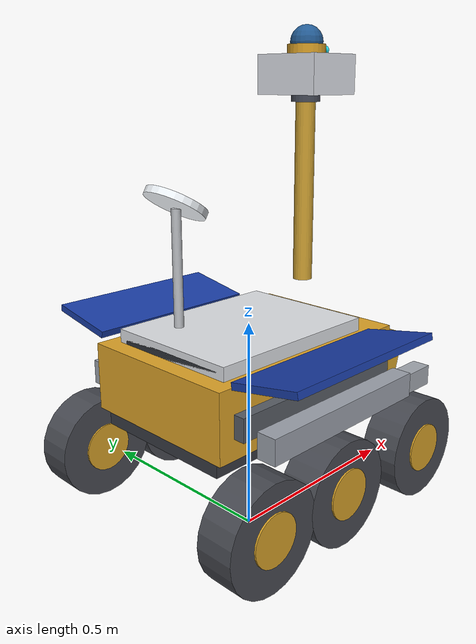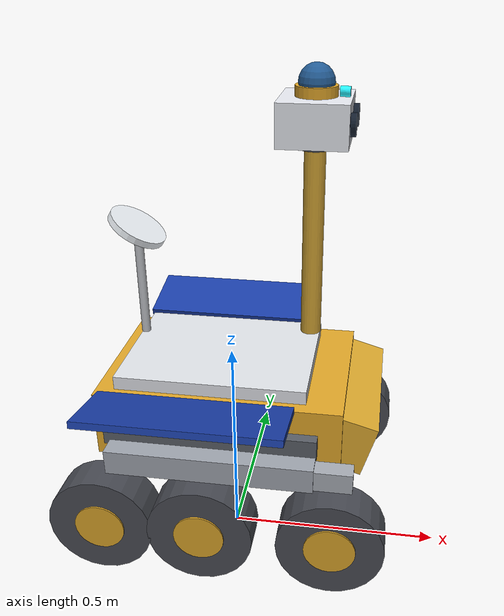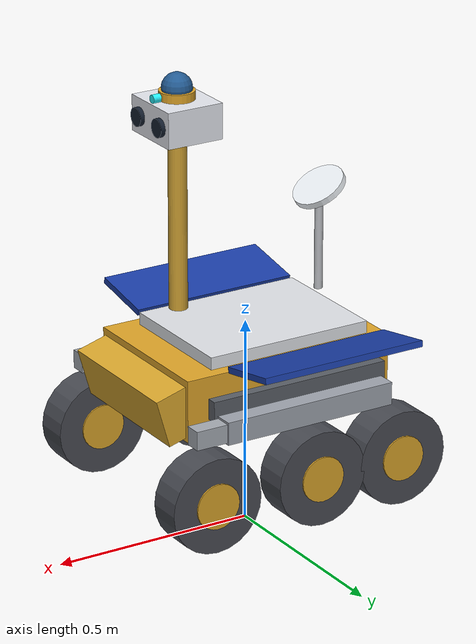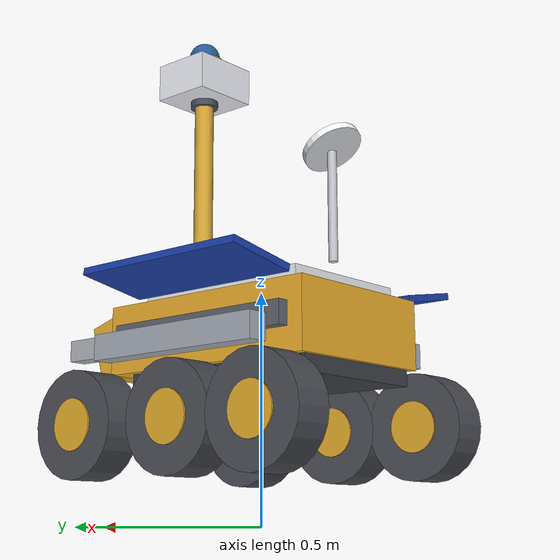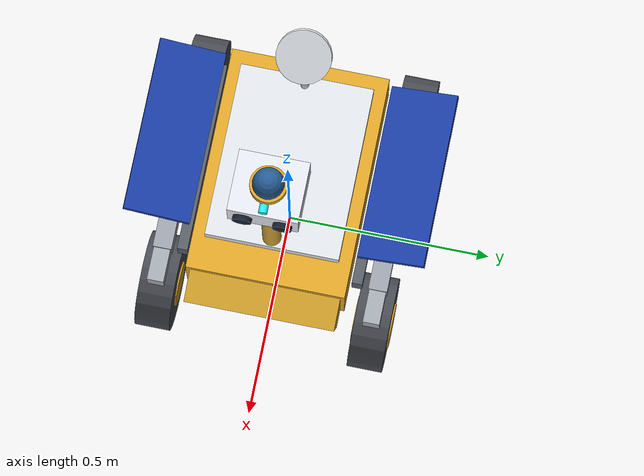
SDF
<?xml version="1.0"?>
<sdf version="1.9">
  <model name="lunabot_v4">
    <pose>0 0 0.52 0 0 0</pose>

    <!-- ================= MAIN CHASSIS (COMPACT TRUE-SCALE LUNAR ROVER: 0.54m x 0.38m GOLD MLI FOIL BODY) ================= -->
    <link name="chassis">
      <pose>0 0 0 0 0 0</pose>
      <inertial>
        <pose>0 0 -0.26 0 0 0</pose><mass>18.0</mass>
        <inertia><ixx>0.48</ixx><ixy>0</ixy><ixz>0</ixz><iyy>0.72</iyy><iyz>0</iyz><izz>0.96</izz></inertia>
      </inertial>
      <collision name="body_collision"><pose>0 0 -0.12 0 0 0</pose><geometry><box><size>0.54 0.38 0.15</size></box></geometry></collision>
      <visual name="body_visual">
        <pose>0 0 -0.12 0 0 0</pose>
        <geometry><box><size>0.54 0.38 0.15</size></box></geometry>
        <material><ambient>0.68 0.48 0.10 1</ambient><diffuse>0.88 0.65 0.16 1</diffuse><specular>0.75 0.65 0.28 1</specular></material>
      </visual>
      <visual name="radiator_louver_visual">
        <pose>-0.04 0 -0.04 0 0 0</pose>
        <geometry><box><size>0.38 0.28 0.02</size></box></geometry>
        <material><ambient>0.12 0.13 0.15 1</ambient><diffuse>0.18 0.20 0.23 1</diffuse><specular>0.4 0.4 0.45 1</specular></material>
      </visual>
    </link>

    <!-- ================= LOWER ARMOR ================= -->
    <link name="lower_armor">
      <pose relative_to="chassis">-0.02 0 -0.21 0 0 0</pose>
      <inertial><mass>1.5</mass><inertia><ixx>0.03</ixx><ixy>0</ixy><ixz>0</ixz><iyy>0.06</iyy><iyz>0</iyz><izz>0.08</izz></inertia></inertial>
      <collision name="armor_collision"><geometry><box><size>0.48 0.34 0.04</size></box></geometry></collision>
      <visual name="armor_visual">
        <geometry><box><size>0.48 0.34 0.04</size></box></geometry>
        <material><ambient>0.15 0.16 0.18 1</ambient><diffuse>0.22 0.23 0.26 1</diffuse></material>
      </visual>
    </link>
    <joint name="lower_armor_joint" type="fixed"><parent>chassis</parent><child>lower_armor</child></joint>

    <!-- ================= UPPER ELECTRONICS DECK ================= -->
    <link name="upper_deck">
      <pose relative_to="chassis">-0.02 0 -0.03 0 0 0</pose>
      <inertial><mass>1.8</mass><inertia><ixx>0.03</ixx><ixy>0</ixy><ixz>0</ixz><iyy>0.05</iyy><iyz>0</iyz><izz>0.07</izz></inertia></inertial>
      <collision name="deck_collision"><geometry><box><size>0.42 0.32 0.03</size></box></geometry></collision>
      <visual name="deck_visual">
        <geometry><box><size>0.42 0.32 0.03</size></box></geometry>
        <material><ambient>0.75 0.76 0.78 1</ambient><diffuse>0.88 0.89 0.91 1</diffuse></material>
      </visual>
    </link>
    <joint name="upper_deck_joint" type="fixed"><parent>chassis</parent><child>upper_deck</child></joint>

    <!-- ================= FRONT ARMOR / APXS SPECTROMETER BUMPER ================= -->
    <link name="front_armor">
      <pose relative_to="chassis">0.29 0 -0.13 0 0.28 0</pose>
      <inertial><mass>0.8</mass><inertia><ixx>0.02</ixx><ixy>0</ixy><ixz>0</ixz><iyy>0.01</iyy><iyz>0</iyz><izz>0.02</izz></inertia></inertial>
      <collision name="front_armor_collision"><geometry><box><size>0.08 0.36 0.12</size></box></geometry></collision>
      <visual name="front_armor_visual">
        <geometry><box><size>0.08 0.36 0.12</size></box></geometry>
        <material><ambient>0.72 0.55 0.15 1</ambient><diffuse>0.86 0.66 0.18 1</diffuse><specular>0.8 0.7 0.4 1</specular></material>
      </visual>
    </link>
    <joint name="front_armor_joint" type="fixed"><parent>chassis</parent><child>front_armor</child></joint>

    <!-- ================= SIDE RAILS ================= -->
    <link name="left_side_rail">
      <pose relative_to="chassis">-0.01 0.21 -0.12 0 0 0</pose>
      <inertial><mass>0.3</mass><inertia><ixx>0.0004</ixx><iyy>0.01</iyy><izz>0.01</izz></inertia></inertial>
      <visual name="rail_visual"><geometry><box><size>0.46 0.025 0.05</size></box></geometry><material><ambient>0.22 0.24 0.27 1</ambient><diffuse>0.35 0.37 0.40 1</diffuse></material></visual>
    </link>
    <joint name="left_side_rail_joint" type="fixed"><parent>chassis</parent><child>left_side_rail</child></joint>

    <link name="right_side_rail">
      <pose relative_to="chassis">-0.01 -0.21 -0.12 0 0 0</pose>
      <inertial><mass>0.3</mass><inertia><ixx>0.0004</ixx><iyy>0.01</iyy><izz>0.01</izz></inertia></inertial>
      <visual name="rail_visual"><geometry><box><size>0.46 0.025 0.05</size></box></geometry><material><ambient>0.22 0.24 0.27 1</ambient><diffuse>0.35 0.37 0.40 1</diffuse></material></visual>
    </link>
    <joint name="right_side_rail_joint" type="fixed"><parent>chassis</parent><child>right_side_rail</child></joint>

    <!-- ================= LEFT ROCKER ================= -->
    <joint name="left_rocker_joint" type="revolute">
      <pose relative_to="chassis">0 0.26 -0.15 0 0 0</pose>
      <parent>chassis</parent><child>left_rocker</child>
      <axis>
        <xyz>0 1 0</xyz>
        <limit><lower>-0.55</lower><upper>0.55</upper><effort>600</effort><velocity>1.0</velocity></limit>
        <dynamics><damping>400</damping><friction>50</friction></dynamics>
      </axis>
    </joint>
    <link name="left_rocker">
      <pose relative_to="left_rocker_joint">0 0 0 0 0 0</pose>
      <inertial><mass>1.6</mass><inertia><ixx>0.002</ixx><iyy>0.05</iyy><izz>0.05</izz></inertia></inertial>
      <collision name="rocker_collision"><geometry><box><size>0.44 0.045 0.055</size></box></geometry></collision>
      <visual name="rocker_visual">
        <geometry><box><size>0.44 0.045 0.055</size></box></geometry>
        <material><ambient>0.42 0.44 0.48 1</ambient><diffuse>0.62 0.64 0.68 1</diffuse></material>
      </visual>
    </link>

    <!-- ================= RIGHT ROCKER ================= -->
    <joint name="right_rocker_joint" type="revolute">
      <pose relative_to="chassis">0 -0.26 -0.15 0 0 0</pose>
      <parent>chassis</parent><child>right_rocker</child>
      <axis>
        <xyz>0 1 0</xyz>
        <limit><lower>-0.55</lower><upper>0.55</upper><effort>600</effort><velocity>1.0</velocity></limit>
        <dynamics><damping>400</damping><friction>50</friction></dynamics>
      </axis>
    </joint>
    <link name="right_rocker">
      <pose relative_to="right_rocker_joint">0 0 0 0 0 0</pose>
      <inertial><mass>1.6</mass><inertia><ixx>0.002</ixx><iyy>0.05</iyy><izz>0.05</izz></inertia></inertial>
      <collision name="rocker_collision"><geometry><box><size>0.44 0.045 0.055</size></box></geometry></collision>
      <visual name="rocker_visual">
        <geometry><box><size>0.44 0.045 0.055</size></box></geometry>
        <material><ambient>0.42 0.44 0.48 1</ambient><diffuse>0.62 0.64 0.68 1</diffuse></material>
      </visual>
    </link>

    <!-- ================= LEFT BOGIE ================= -->
    <joint name="left_bogie_joint" type="revolute">
      <pose relative_to="left_rocker">0.12 0 0 0 0 0</pose>
      <parent>left_rocker</parent><child>left_bogie</child>
      <axis>
        <xyz>0 1 0</xyz>
        <limit><lower>-0.65</lower><upper>0.65</upper><effort>450</effort><velocity>1.2</velocity></limit>
        <dynamics><damping>150</damping><friction>30</friction></dynamics>
      </axis>
    </joint>
    <link name="left_bogie">
      <pose relative_to="left_bogie_joint">0 0 0 0 0 0</pose>
      <inertial><mass>1.2</mass><inertia><ixx>0.001</ixx><iyy>0.03</iyy><izz>0.03</izz></inertia></inertial>
      <collision name="bogie_collision"><geometry><box><size>0.36 0.04 0.045</size></box></geometry></collision>
      <visual name="bogie_visual">
        <geometry><box><size>0.36 0.04 0.045</size></box></geometry>
        <material><ambient>0.45 0.47 0.50 1</ambient><diffuse>0.65 0.67 0.70 1</diffuse></material>
      </visual>
    </link>

    <!-- ================= RIGHT BOGIE ================= -->
    <joint name="right_bogie_joint" type="revolute">
      <pose relative_to="right_rocker">0.12 0 0 0 0 0</pose>
      <parent>right_rocker</parent><child>right_bogie</child>
      <axis>
        <xyz>0 1 0</xyz>
        <limit><lower>-0.65</lower><upper>0.65</upper><effort>450</effort><velocity>1.2</velocity></limit>
        <dynamics><damping>150</damping><friction>30</friction></dynamics>
      </axis>
    </joint>
    <link name="right_bogie">
      <pose relative_to="right_bogie_joint">0 0 0 0 0 0</pose>
      <inertial><mass>1.2</mass><inertia><ixx>0.001</ixx><iyy>0.03</iyy><izz>0.03</izz></inertia></inertial>
      <collision name="bogie_collision"><geometry><box><size>0.36 0.04 0.045</size></box></geometry></collision>
      <visual name="bogie_visual">
        <geometry><box><size>0.36 0.04 0.045</size></box></geometry>
        <material><ambient>0.45 0.47 0.50 1</ambient><diffuse>0.65 0.67 0.70 1</diffuse></material>
      </visual>
    </link>

    <!-- ========== LEFT FRONT (steerable) ========== -->
    <joint name="left_front_steer_joint" type="revolute">
      <pose relative_to="left_bogie">0.14 0 -0.16 0 0 0</pose>
      <parent>left_bogie</parent><child>left_front_knuckle</child>
      <axis>
        <xyz>0 0 1</xyz>
        <limit><lower>-0.6</lower><upper>0.6</upper><effort>80</effort><velocity>2.0</velocity></limit>
        <dynamics><damping>2</damping><friction>0.5</friction></dynamics>
      </axis>
    </joint>
    <link name="left_front_knuckle">
      <pose relative_to="left_front_steer_joint">0 0 0 0 0 0</pose>
      <inertial><mass>1.0</mass><inertia><ixx>0.00018</ixx><iyy>0.00025</iyy><izz>0.00025</izz></inertia></inertial>
      <visual name="knuckle_visual"><geometry><box><size>0.05 0.04 0.04</size></box></geometry><material><ambient>0.5 0.5 0.52 1</ambient></material></visual>
    </link>
    <joint name="left_front_wheel_joint" type="revolute">
      <pose relative_to="left_front_knuckle">0 0 0 0 0 0</pose>
      <parent>left_front_knuckle</parent><child>left_front_wheel</child>
      <axis>
        <xyz expressed_in="__model__">0 1 0</xyz>
        <limit><lower>-100000</lower><upper>100000</upper><effort>160</effort><velocity>25</velocity></limit>
        <dynamics><damping>3.0</damping><friction>0.03</friction></dynamics>
      </axis>
    </joint>
    <link name="left_front_wheel">
      <pose relative_to="left_front_wheel_joint">0 0 0 1.5708 0 0</pose>
      <inertial><mass>1.4</mass><inertia><ixx>0.012</ixx><iyy>0.012</iyy><izz>0.020</izz></inertia></inertial>
      <collision name="wheel_collision">
        <geometry><cylinder><radius>0.115</radius><length>0.085</length></cylinder></geometry>
        <surface><friction><ode><mu>3.5</mu><mu2>0.18</mu2><fdir1>1 0 0</fdir1><slip1>0.01</slip1><slip2>0.18</slip2></ode></friction></surface>
      </collision>
      <visual name="wheel_visual"><geometry><cylinder><radius>0.115</radius><length>0.085</length></cylinder></geometry><material><ambient>0.18 0.19 0.21 1</ambient><diffuse>0.28 0.29 0.32 1</diffuse><specular>0.35 0.35 0.40 1</specular></material></visual>
      <visual name="hub_visual"><geometry><cylinder><radius>0.055</radius><length>0.092</length></cylinder></geometry><material><ambient>0.65 0.48 0.12 1</ambient><diffuse>0.85 0.64 0.16 1</diffuse></material></visual>
    </link>

    <!-- ========== RIGHT FRONT (steerable) ========== -->
    <joint name="right_front_steer_joint" type="revolute">
      <pose relative_to="right_bogie">0.14 0 -0.16 0 0 0</pose>
      <parent>right_bogie</parent><child>right_front_knuckle</child>
      <axis>
        <xyz>0 0 1</xyz>
        <limit><lower>-0.6</lower><upper>0.6</upper><effort>80</effort><velocity>2.0</velocity></limit>
        <dynamics><damping>2</damping><friction>0.5</friction></dynamics>
      </axis>
    </joint>
    <link name="right_front_knuckle">
      <pose relative_to="right_front_steer_joint">0 0 0 0 0 0</pose>
      <inertial><mass>1.0</mass><inertia><ixx>0.00018</ixx><iyy>0.00025</iyy><izz>0.00025</izz></inertia></inertial>
      <visual name="knuckle_visual"><geometry><box><size>0.05 0.04 0.04</size></box></geometry><material><ambient>0.5 0.5 0.52 1</ambient></material></visual>
    </link>
    <joint name="right_front_wheel_joint" type="revolute">
      <pose relative_to="right_front_knuckle">0 0 0 0 0 0</pose>
      <parent>right_front_knuckle</parent><child>right_front_wheel</child>
      <axis>
        <xyz expressed_in="__model__">0 1 0</xyz>
        <limit><lower>-100000</lower><upper>100000</upper><effort>160</effort><velocity>25</velocity></limit>
        <dynamics><damping>3.0</damping><friction>0.03</friction></dynamics>
      </axis>
    </joint>
    <link name="right_front_wheel">
      <pose relative_to="right_front_wheel_joint">0 0 0 1.5708 0 0</pose>
      <inertial><mass>1.4</mass><inertia><ixx>0.012</ixx><iyy>0.012</iyy><izz>0.020</izz></inertia></inertial>
      <collision name="wheel_collision">
        <geometry><cylinder><radius>0.115</radius><length>0.085</length></cylinder></geometry>
        <surface><friction><ode><mu>3.5</mu><mu2>0.18</mu2><fdir1>1 0 0</fdir1><slip1>0.01</slip1><slip2>0.18</slip2></ode></friction></surface>
      </collision>
      <visual name="wheel_visual"><geometry><cylinder><radius>0.115</radius><length>0.085</length></cylinder></geometry><material><ambient>0.18 0.19 0.21 1</ambient><diffuse>0.28 0.29 0.32 1</diffuse><specular>0.35 0.35 0.40 1</specular></material></visual>
      <visual name="hub_visual"><geometry><cylinder><radius>0.055</radius><length>0.092</length></cylinder></geometry><material><ambient>0.65 0.48 0.12 1</ambient><diffuse>0.85 0.64 0.16 1</diffuse></material></visual>
    </link>

    <!-- ========== LEFT REAR (steerable) ========== -->
    <joint name="left_rear_steer_joint" type="revolute">
      <pose relative_to="left_rocker">-0.24 0 -0.16 0 0 0</pose>
      <parent>left_rocker</parent><child>left_rear_knuckle</child>
      <axis>
        <xyz>0 0 1</xyz>
        <limit><lower>-0.6</lower><upper>0.6</upper><effort>80</effort><velocity>2.0</velocity></limit>
        <dynamics><damping>2</damping><friction>0.5</friction></dynamics>
      </axis>
    </joint>
    <link name="left_rear_knuckle">
      <pose relative_to="left_rear_steer_joint">0 0 0 0 0 0</pose>
      <inertial><mass>1.0</mass><inertia><ixx>0.00018</ixx><iyy>0.00025</iyy><izz>0.00025</izz></inertia></inertial>
      <visual name="knuckle_visual"><geometry><box><size>0.05 0.04 0.04</size></box></geometry><material><ambient>0.5 0.5 0.52 1</ambient></material></visual>
    </link>
    <joint name="left_rear_wheel_joint" type="revolute">
      <pose relative_to="left_rear_knuckle">0 0 0 0 0 0</pose>
      <parent>left_rear_knuckle</parent><child>left_rear_wheel</child>
      <axis>
        <xyz expressed_in="__model__">0 1 0</xyz>
        <limit><lower>-100000</lower><upper>100000</upper><effort>160</effort><velocity>25</velocity></limit>
        <dynamics><damping>3.0</damping><friction>0.03</friction></dynamics>
      </axis>
    </joint>
    <link name="left_rear_wheel">
      <pose relative_to="left_rear_wheel_joint">0 0 0 1.5708 0 0</pose>
      <inertial><mass>1.4</mass><inertia><ixx>0.012</ixx><iyy>0.012</iyy><izz>0.020</izz></inertia></inertial>
      <collision name="wheel_collision">
        <geometry><cylinder><radius>0.115</radius><length>0.085</length></cylinder></geometry>
        <surface><friction><ode><mu>3.5</mu><mu2>0.18</mu2><fdir1>1 0 0</fdir1><slip1>0.01</slip1><slip2>0.18</slip2></ode></friction></surface>
      </collision>
      <visual name="wheel_visual"><geometry><cylinder><radius>0.115</radius><length>0.085</length></cylinder></geometry><material><ambient>0.18 0.19 0.21 1</ambient><diffuse>0.28 0.29 0.32 1</diffuse><specular>0.35 0.35 0.40 1</specular></material></visual>
      <visual name="hub_visual"><geometry><cylinder><radius>0.055</radius><length>0.092</length></cylinder></geometry><material><ambient>0.65 0.48 0.12 1</ambient><diffuse>0.85 0.64 0.16 1</diffuse></material></visual>
    </link>

    <!-- ========== RIGHT REAR (steerable) ========== -->
    <joint name="right_rear_steer_joint" type="revolute">
      <pose relative_to="right_rocker">-0.24 0 -0.16 0 0 0</pose>
      <parent>right_rocker</parent><child>right_rear_knuckle</child>
      <axis>
        <xyz>0 0 1</xyz>
        <limit><lower>-0.6</lower><upper>0.6</upper><effort>80</effort><velocity>2.0</velocity></limit>
        <dynamics><damping>2</damping><friction>0.5</friction></dynamics>
      </axis>
    </joint>
    <link name="right_rear_knuckle">
      <pose relative_to="right_rear_steer_joint">0 0 0 0 0 0</pose>
      <inertial><mass>1.0</mass><inertia><ixx>0.00018</ixx><iyy>0.00025</iyy><izz>0.00025</izz></inertia></inertial>
      <visual name="knuckle_visual"><geometry><box><size>0.05 0.04 0.04</size></box></geometry><material><ambient>0.5 0.5 0.52 1</ambient></material></visual>
    </link>
    <joint name="right_rear_wheel_joint" type="revolute">
      <pose relative_to="right_rear_knuckle">0 0 0 0 0 0</pose>
      <parent>right_rear_knuckle</parent><child>right_rear_wheel</child>
      <axis>
        <xyz expressed_in="__model__">0 1 0</xyz>
        <limit><lower>-100000</lower><upper>100000</upper><effort>160</effort><velocity>25</velocity></limit>
        <dynamics><damping>3.0</damping><friction>0.03</friction></dynamics>
      </axis>
    </joint>
    <link name="right_rear_wheel">
      <pose relative_to="right_rear_wheel_joint">0 0 0 1.5708 0 0</pose>
      <inertial><mass>1.4</mass><inertia><ixx>0.012</ixx><iyy>0.012</iyy><izz>0.020</izz></inertia></inertial>
      <collision name="wheel_collision">
        <geometry><cylinder><radius>0.115</radius><length>0.085</length></cylinder></geometry>
        <surface><friction><ode><mu>3.5</mu><mu2>0.18</mu2><fdir1>1 0 0</fdir1><slip1>0.01</slip1><slip2>0.18</slip2></ode></friction></surface>
      </collision>
      <visual name="wheel_visual"><geometry><cylinder><radius>0.115</radius><length>0.085</length></cylinder></geometry><material><ambient>0.18 0.19 0.21 1</ambient><diffuse>0.28 0.29 0.32 1</diffuse><specular>0.35 0.35 0.40 1</specular></material></visual>
      <visual name="hub_visual"><geometry><cylinder><radius>0.055</radius><length>0.092</length></cylinder></geometry><material><ambient>0.65 0.48 0.12 1</ambient><diffuse>0.85 0.64 0.16 1</diffuse></material></visual>
    </link>

    <!-- ========== MIDDLE WHEELS (fixed spin, no steering) ========== -->
    <joint name="left_middle_wheel_joint" type="revolute">
      <pose relative_to="left_bogie">-0.14 0 -0.16 0 0 0</pose>
      <parent>left_bogie</parent><child>left_middle_wheel</child>
      <axis>
        <xyz expressed_in="__model__">0 1 0</xyz>
        <limit><lower>-100000</lower><upper>100000</upper><effort>160</effort><velocity>25</velocity></limit>
        <dynamics><damping>3.0</damping><friction>0.03</friction></dynamics>
      </axis>
    </joint>
    <link name="left_middle_wheel">
      <pose relative_to="left_middle_wheel_joint">0 0 0 1.5708 0 0</pose>
      <inertial><mass>1.4</mass><inertia><ixx>0.012</ixx><iyy>0.012</iyy><izz>0.020</izz></inertia></inertial>
      <collision name="wheel_collision"><geometry><cylinder><radius>0.115</radius><length>0.085</length></cylinder></geometry><surface><friction><ode><mu>4.0</mu><mu2>4.0</mu2></ode></friction></surface></collision>
      <visual name="wheel_visual"><geometry><cylinder><radius>0.115</radius><length>0.085</length></cylinder></geometry><material><ambient>0.18 0.19 0.21 1</ambient><diffuse>0.28 0.29 0.32 1</diffuse><specular>0.35 0.35 0.40 1</specular></material></visual>
      <visual name="hub_visual"><geometry><cylinder><radius>0.055</radius><length>0.092</length></cylinder></geometry><material><ambient>0.65 0.48 0.12 1</ambient><diffuse>0.85 0.64 0.16 1</diffuse></material></visual>
    </link>

    <joint name="right_middle_wheel_joint" type="revolute">
      <pose relative_to="right_bogie">-0.14 0 -0.16 0 0 0</pose>
      <parent>right_bogie</parent><child>right_middle_wheel</child>
      <axis>
        <xyz expressed_in="__model__">0 1 0</xyz>
        <limit><lower>-100000</lower><upper>100000</upper><effort>160</effort><velocity>25</velocity></limit>
        <dynamics><damping>3.0</damping><friction>0.03</friction></dynamics>
      </axis>
    </joint>
    <link name="right_middle_wheel">
      <pose relative_to="right_middle_wheel_joint">0 0 0 1.5708 0 0</pose>
      <inertial><mass>1.4</mass><inertia><ixx>0.012</ixx><iyy>0.012</iyy><izz>0.020</izz></inertia></inertial>
      <collision name="wheel_collision"><geometry><cylinder><radius>0.115</radius><length>0.085</length></cylinder></geometry><surface><friction><ode><mu>4.0</mu><mu2>4.0</mu2></ode></friction></surface></collision>
      <visual name="wheel_visual"><geometry><cylinder><radius>0.115</radius><length>0.085</length></cylinder></geometry><material><ambient>0.18 0.19 0.21 1</ambient><diffuse>0.28 0.29 0.32 1</diffuse><specular>0.35 0.35 0.40 1</specular></material></visual>
      <visual name="hub_visual"><geometry><cylinder><radius>0.055</radius><length>0.092</length></cylinder></geometry><material><ambient>0.65 0.48 0.12 1</ambient><diffuse>0.85 0.64 0.16 1</diffuse></material></visual>
    </link>

    <!-- ================= COMPACT SOLAR PANELS ================= -->
    <link name="left_solar_panel">
      <pose relative_to="chassis">-0.04 0.28 -0.02 0.18 0 0</pose>
      <inertial><mass>0.4</mass><inertia><ixx>0.003</ixx><iyy>0.01</iyy><izz>0.01</izz></inertia></inertial>
      <visual name="panel"><geometry><box><size>0.42 0.16 0.015</size></box></geometry><material><ambient>0.06 0.14 0.38 1</ambient><diffuse>0.10 0.24 0.65 1</diffuse><specular>0.6 0.65 0.75 1</specular></material></visual>
    </link>
    <joint name="left_solar_panel_joint" type="fixed"><parent>chassis</parent><child>left_solar_panel</child></joint>

    <link name="right_solar_panel">
      <pose relative_to="chassis">-0.04 -0.28 -0.02 -0.18 0 0</pose>
      <inertial><mass>0.4</mass><inertia><ixx>0.003</ixx><iyy>0.01</iyy><izz>0.01</izz></inertia></inertial>
      <visual name="panel"><geometry><box><size>0.42 0.16 0.015</size></box></geometry><material><ambient>0.06 0.14 0.38 1</ambient><diffuse>0.10 0.24 0.65 1</diffuse><specular>0.6 0.65 0.75 1</specular></material></visual>
    </link>
    <joint name="right_solar_panel_joint" type="fixed"><parent>chassis</parent><child>right_solar_panel</child></joint>

    <!-- ================= SENSOR MAST ================= -->
    <link name="sensor_mast">
      <pose relative_to="chassis">0.18 0 0.54 0 0 0</pose>
      <inertial><mass>0.8</mass><inertia><ixx>0.02</ixx><iyy>0.02</iyy><izz>0.001</izz></inertia></inertial>
      <visual name="mast"><pose>0 0 -0.28 0 0 0</pose><geometry><cylinder><radius>0.022</radius><length>0.42</length></cylinder></geometry><material><ambient>0.65 0.50 0.16 1</ambient><diffuse>0.82 0.64 0.20 1</diffuse><specular>0.8 0.7 0.4 1</specular></material></visual>
    </link>
    <joint name="sensor_mast_joint" type="fixed"><parent>chassis</parent><child>sensor_mast</child></joint>

    <!-- ========== FIXED SENSOR HEAD (HOLDS 360° LIDAR BASE SO SLAM TF IS INVARIANT) ========== -->
    <joint name="sensor_head_joint" type="fixed">
      <pose relative_to="sensor_mast">0 0 0.31 0 0 0</pose>
      <parent>sensor_mast</parent><child>sensor_head</child>
    </joint>
    <link name="sensor_head">
      <pose relative_to="sensor_head_joint">0 0 0 0 0 0</pose>
      <inertial><mass>0.3</mass><inertia><ixx>0.001</ixx><iyy>0.001</iyy><izz>0.001</izz></inertia></inertial>
      <visual name="lidar_collar_visual">
        <pose>0 0 -0.38 0 0 0</pose>
        <geometry><cylinder><radius>0.032</radius><length>0.035</length></cylinder></geometry>
        <material><ambient>0.18 0.20 0.24 1</ambient><diffuse>0.28 0.30 0.35 1</diffuse></material>
      </visual>

      <sensor name="lidar" type="gpu_lidar">
        <pose relative_to="sensor_head">0.02 0 0.09 0 0.5 0</pose>
        <update_rate>10</update_rate>
        <topic>/lunabot/lidar/scan</topic>
        <ray><scan><horizontal><samples>720</samples><resolution>1</resolution><min_angle>-3.14159</min_angle><max_angle>3.14159</max_angle></horizontal></scan><range><min>0.12</min><max>60</max><resolution>0.01</resolution></range></ray>
        <always_on>true</always_on><visualize>true</visualize>
      </sensor>
    </link>

    <!-- ========== 360-DEGREE ROTATABLE CAMERA PAN JOINT (-360° TO +360° CONTINUOUS) ========== -->
    <joint name="mast_pan_joint" type="revolute">
      <pose relative_to="sensor_head">0 0 -0.34 0 0 0</pose>
      <parent>sensor_head</parent><child>mast_pan_link</child>
      <axis>
        <xyz>0 0 1</xyz>
        <limit><lower>-6.28318</lower><upper>6.28318</upper><effort>20</effort><velocity>3.5</velocity></limit>
        <dynamics><damping>0.8</damping><friction>0.05</friction></dynamics>
      </axis>
    </joint>
    <link name="mast_pan_link">
      <pose relative_to="mast_pan_joint">0 0 0 0 0 0</pose>
      <inertial><mass>0.2</mass><inertia><ixx>0.0001217</ixx><iyy>0.0001217</iyy><izz>0.00016</izz></inertia></inertial>
      <visual name="pan_visual">
        <pose>0 0 -0.02 0 0 0</pose>
        <geometry><cylinder><radius>0.028</radius><length>0.04</length></cylinder></geometry>
        <material><ambient>0.50 0.52 0.56 1</ambient><diffuse>0.72 0.74 0.78 1</diffuse></material>
      </visual>
    </link>

    <!-- ========== AUTOMATIC SITUATIONAL CAMERA TILT JOINT + 360° CAMERA TURRET ========== -->
    <joint name="mast_tilt_joint" type="revolute">
      <pose relative_to="mast_pan_link">0 0 0 0 0 0</pose>
      <parent>mast_pan_link</parent><child>mast_tilt_link</child>
      <axis>
        <xyz>0 1 0</xyz>
        <limit><lower>-0.65</lower><upper>0.65</upper><effort>15</effort><velocity>2.5</velocity></limit>
        <dynamics><damping>0.8</damping><friction>0.05</friction></dynamics>
      </axis>
    </joint>
    <link name="mast_tilt_link">
      <pose relative_to="mast_tilt_joint">0 0 0 0 0 0</pose>
      <inertial><mass>0.4</mass><inertia><ixx>0.002</ixx><iyy>0.003</iyy><izz>0.003</izz></inertia></inertial>
      <visual name="head">
        <pose>0 0 0 0 0 0</pose>
        <geometry><box><size>0.14 0.16 0.085</size></box></geometry>
        <material><ambient>0.76 0.77 0.80 1</ambient><diffuse>0.90 0.91 0.94 1</diffuse></material>
      </visual>
      <visual name="lens_left">
        <pose>0.072 0.045 0 0 1.5708 0</pose>
        <geometry><cylinder><radius>0.022</radius><length>0.018</length></cylinder></geometry>
        <material><ambient>0.05 0.08 0.12 1</ambient><diffuse>0.08 0.12 0.18 1</diffuse><specular>0.9 0.9 0.95 1</specular></material>
      </visual>
      <visual name="lens_right">
        <pose>0.072 -0.045 0 0 1.5708 0</pose>
        <geometry><cylinder><radius>0.022</radius><length>0.018</length></cylinder></geometry>
        <material><ambient>0.05 0.08 0.12 1</ambient><diffuse>0.08 0.12 0.18 1</diffuse><specular>0.9 0.9 0.95 1</specular></material>
      </visual>
      <visual name="cam_360_turret_ring">
        <pose>0 0 0.052 0 0 0</pose>
        <geometry><cylinder><radius>0.042</radius><length>0.022</length></cylinder></geometry>
        <material><ambient>0.68 0.48 0.10 1</ambient><diffuse>0.88 0.65 0.16 1</diffuse><specular>0.75 0.65 0.28 1</specular></material>
      </visual>
      <visual name="cam_360_dome_lens">
        <pose>0 0 0.068 0 0 0</pose>
        <geometry><sphere><radius>0.036</radius></sphere></geometry>
        <material><ambient>0.08 0.22 0.38 1</ambient><diffuse>0.14 0.36 0.58 1</diffuse><specular>0.95 0.95 1.0 1</specular></material>
      </visual>
      <visual name="cam_direction_beacon">
        <pose>0.055 0 0.052 0 1.5708 0</pose>
        <geometry><cylinder><radius>0.010</radius><length>0.020</length></cylinder></geometry>
        <material><ambient>0.10 0.85 0.95 1</ambient><diffuse>0.15 0.95 1.0 1</diffuse><emissive>0.12 0.85 0.98 1</emissive></material>
      </visual>

      <sensor name="rgb_camera" type="camera">
        <pose relative_to="mast_tilt_link">0.14 0 0.34 0 0 0</pose>
        <update_rate>20</update_rate>
        <camera><horizontal_fov>1.047</horizontal_fov><image><width>640</width><height>480</height><format>R8G8B8</format></image><clip><near>0.05</near><far>120</far></clip></camera>
        <always_on>true</always_on><visualize>true</visualize><topic>/lunabot/camera/image_raw</topic>
      </sensor>

      <sensor name="depth_camera" type="depth_camera">
        <pose relative_to="mast_tilt_link">0.14 0 0.30 0 0 0</pose>
        <update_rate>15</update_rate>
        <camera><horizontal_fov>1.047</horizontal_fov><image><width>640</width><height>480</height></image><clip><near>0.10</near><far>40</far></clip></camera>
        <always_on>true</always_on><visualize>true</visualize><topic>/lunabot/depth/image_raw</topic>
      </sensor>
    </link>

    <!-- ================= ANTENNA ================= -->
    <link name="antenna">
      <pose relative_to="chassis">-0.20 0 0.14 0 0 0</pose>
      <inertial><mass>0.2</mass><inertia><ixx>0.001</ixx><iyy>0.001</iyy><izz>0.00004</izz></inertia></inertial>
      <visual name="antenna_stem"><geometry><cylinder><radius>0.010</radius><length>0.24</length></cylinder></geometry><material><ambient>0.55 0.56 0.58 1</ambient><diffuse>0.75 0.76 0.78 1</diffuse></material></visual>
      <visual name="hga_dish"><pose>0 0 0.13 0 0.55 0</pose><geometry><cylinder><radius>0.065</radius><length>0.015</length></cylinder></geometry><material><ambient>0.82 0.84 0.86 1</ambient><diffuse>0.94 0.96 0.98 1</diffuse></material></visual>
    </link>
    <joint name="antenna_joint" type="fixed"><parent>chassis</parent><child>antenna</child></joint>

    <!-- ================= IMU ================= -->
    <link name="imu_link">
      <pose relative_to="chassis">0 0 0.10 0 0 0</pose>
      <inertial><mass>0.05</mass><inertia><ixx>0.00001</ixx><iyy>0.00001</iyy><izz>0.00001</izz></inertia></inertial>
      <sensor name="imu" type="imu">
        <always_on>true</always_on>
        <update_rate>100</update_rate>
        <imu>
          <angular_velocity><x><noise type="gaussian"><mean>0</mean><stddev>0.0002</stddev></noise></x><y><noise type="gaussian"><mean>0</mean><stddev>0.0002</stddev></noise></y><z><noise type="gaussian"><mean>0</mean><stddev>0.0002</stddev></noise></z></angular_velocity>
          <linear_acceleration><x><noise type="gaussian"><mean>0</mean><stddev>0.002</stddev></noise></x><y><noise type="gaussian"><mean>0</mean><stddev>0.002</stddev></noise></y><z><noise type="gaussian"><mean>0</mean><stddev>0.002</stddev></noise></z></linear_acceleration>
        </imu>
        <topic>/lunabot/imu</topic>
      </sensor>
    </link>
    <joint name="imu_joint" type="fixed"><parent>chassis</parent><child>imu_link</child></joint>

    <!-- ================= DIFFERENTIAL DRIVE ================= -->
    <plugin filename="ignition-gazebo-diff-drive-system" name="ignition::gazebo::systems::DiffDrive">
      <left_joint>left_front_wheel_joint</left_joint>
      <left_joint>left_middle_wheel_joint</left_joint>
      <left_joint>left_rear_wheel_joint</left_joint>
      <right_joint>right_front_wheel_joint</right_joint>
      <right_joint>right_middle_wheel_joint</right_joint>
      <right_joint>right_rear_wheel_joint</right_joint>
      <wheel_separation>0.52</wheel_separation>
      <wheel_radius>0.115</wheel_radius>
      <max_linear_velocity>0.45</max_linear_velocity>
      <min_linear_velocity>-0.45</min_linear_velocity>
      <max_angular_velocity>1.0</max_angular_velocity>
      <min_angular_velocity>-1.0</min_angular_velocity>
      <max_linear_acceleration>0.8</max_linear_acceleration>
      <max_angular_acceleration>1.8</max_angular_acceleration>
      <odom_publish_frequency>30</odom_publish_frequency>
      <topic>/cmd_vel</topic>
      <odom_topic>/lunabot/odom</odom_topic>
      <tf_topic>/tf</tf_topic>
      <frame_id>odom</frame_id>
      <child_frame_id>chassis</child_frame_id>
    </plugin>

    <!-- ================= CONTROLLERS ================= -->
    <plugin filename="ignition-gazebo-joint-position-controller-system" name="ignition::gazebo::systems::JointPositionController">
      <joint_name>left_front_steer_joint</joint_name><topic>/lunabot/steer/front_left</topic><p_gain>8</p_gain><i_gain>0.1</i_gain><d_gain>0.2</d_gain>
    </plugin>
    <plugin filename="ignition-gazebo-joint-position-controller-system" name="ignition::gazebo::systems::JointPositionController">
      <joint_name>right_front_steer_joint</joint_name><topic>/lunabot/steer/front_right</topic><p_gain>8</p_gain><i_gain>0.1</i_gain><d_gain>0.2</d_gain>
    </plugin>
    <plugin filename="ignition-gazebo-joint-position-controller-system" name="ignition::gazebo::systems::JointPositionController">
      <joint_name>left_rear_steer_joint</joint_name><topic>/lunabot/steer/rear_left</topic><p_gain>8</p_gain><i_gain>0.1</i_gain><d_gain>0.2</d_gain>
    </plugin>
    <plugin filename="ignition-gazebo-joint-position-controller-system" name="ignition::gazebo::systems::JointPositionController">
      <joint_name>right_rear_steer_joint</joint_name><topic>/lunabot/steer/rear_right</topic><p_gain>8</p_gain><i_gain>0.1</i_gain><d_gain>0.2</d_gain>
    </plugin>
    <plugin filename="ignition-gazebo-joint-position-controller-system" name="ignition::gazebo::systems::JointPositionController">
      <joint_name>mast_pan_joint</joint_name><topic>/lunabot/mast/pan</topic><p_gain>5</p_gain><i_gain>0.05</i_gain><d_gain>0.1</d_gain>
    </plugin>
    <plugin filename="ignition-gazebo-joint-position-controller-system" name="ignition::gazebo::systems::JointPositionController">
      <joint_name>mast_tilt_joint</joint_name><topic>/lunabot/mast/tilt</topic><p_gain>5</p_gain><i_gain>0.05</i_gain><d_gain>0.1</d_gain>
    </plugin>
    <plugin filename="ignition-gazebo-joint-state-publisher-system" name="ignition::gazebo::systems::JointStatePublisher">
      <joint_name>left_front_wheel_joint</joint_name><joint_name>left_middle_wheel_joint</joint_name><joint_name>left_rear_wheel_joint</joint_name><joint_name>right_front_wheel_joint</joint_name><joint_name>right_middle_wheel_joint</joint_name><joint_name>right_rear_wheel_joint</joint_name><joint_name>left_front_steer_joint</joint_name><joint_name>right_front_steer_joint</joint_name><joint_name>left_rear_steer_joint</joint_name><joint_name>right_rear_steer_joint</joint_name><joint_name>left_rocker_joint</joint_name><joint_name>right_rocker_joint</joint_name><joint_name>left_bogie_joint</joint_name><joint_name>right_bogie_joint</joint_name><joint_name>mast_pan_joint</joint_name><joint_name>mast_tilt_joint</joint_name><topic>/lunabot/joint_states</topic>
    </plugin>
  </model>
</sdf>
